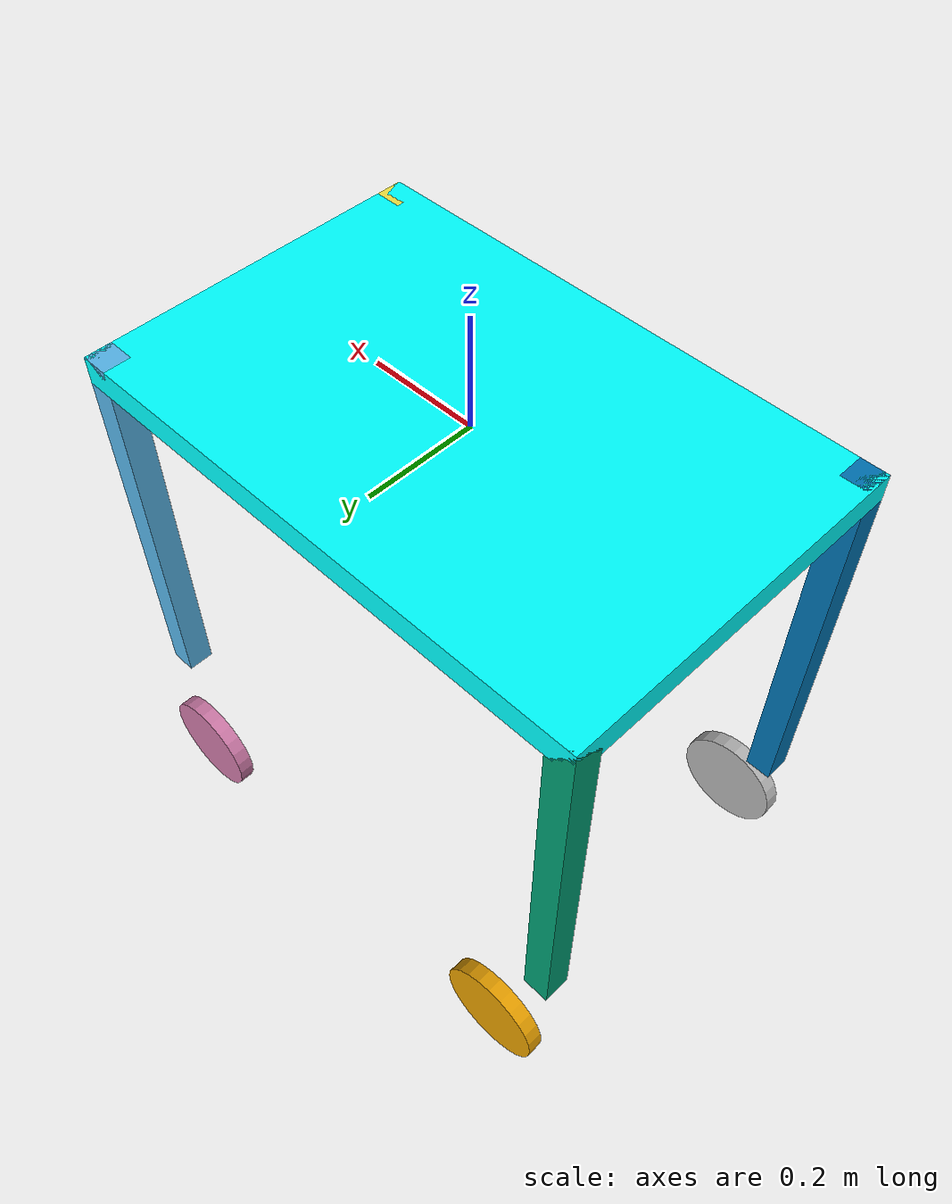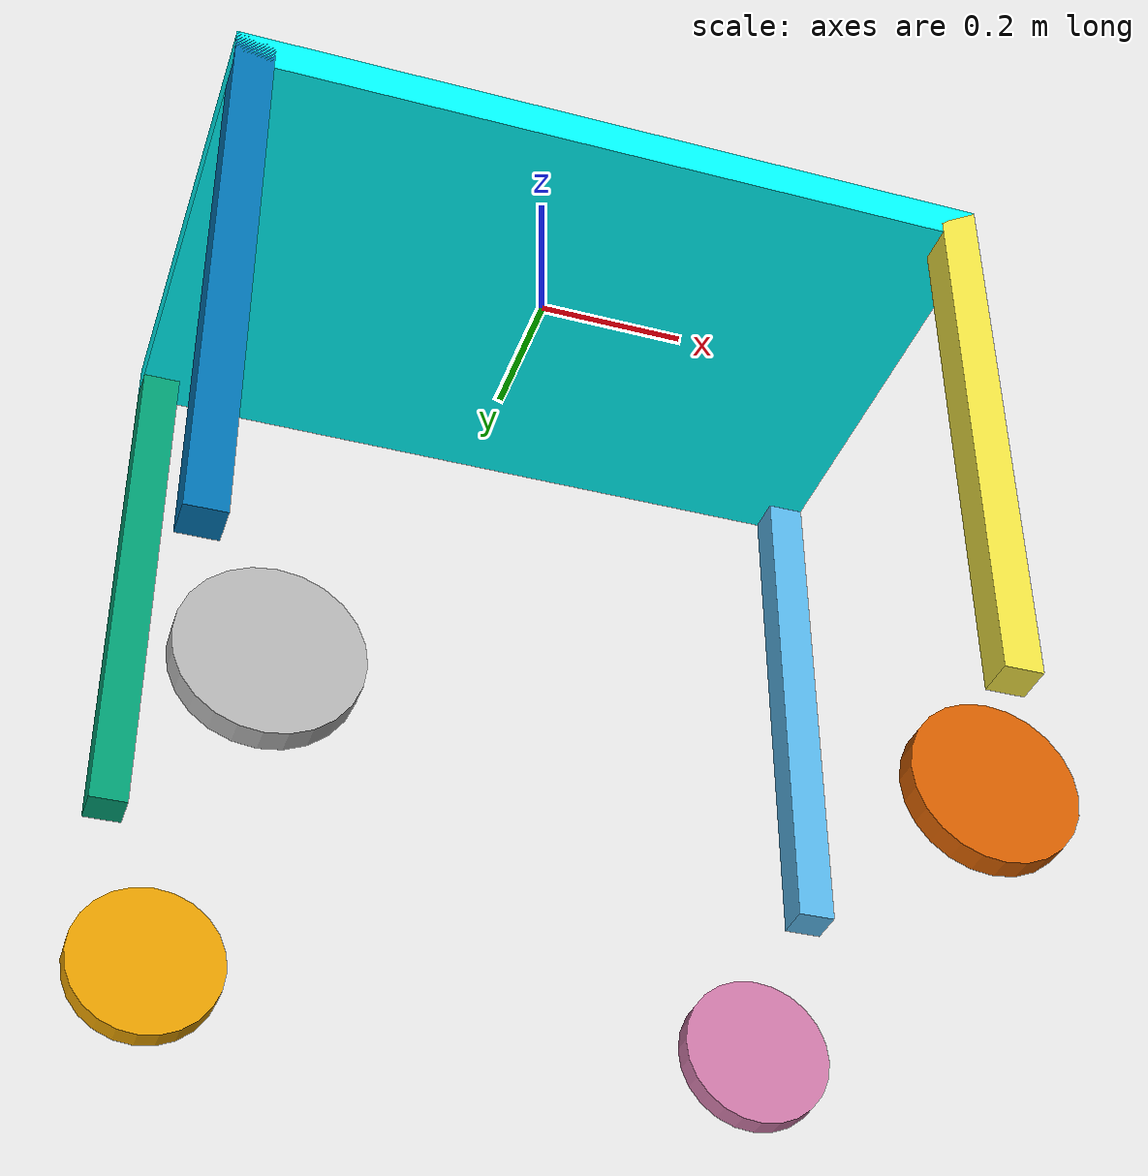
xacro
<?xml version='1.0'?>

<robot name="robot" xmlns:xacro="http://www.ros.org/wiki/xacro">

  <xacro:property name="chassis_width" value="0.65"/>
  <xacro:property name="chassis_length" value="1"/>
  <xacro:property name="chassis_height" value="0.05"/>
  <xacro:property name="chassis_mass" value="1.0"/>
  <xacro:property name="wheel_radius" value="0.1"/>
  <xacro:property name="wheel_width" value="0.03"/>
  <xacro:property name="wheel_mass" value="0.5"/>
  <xacro:property name="leg_length" value="0.05"/>
  <xacro:property name="leg_width" value="0.05"/>
  <xacro:property name="leg_height" value="0.75"/>
  <xacro:property name="leg_mass" value="0.4"/>
  <link name='chassis'>
    <collision name='chassis_collision'>
      <geometry>
        <box size="${chassis_length} ${chassis_width} ${chassis_height}"/>
      </geometry>
    </collision>
    <visual name='chassis_visual'>
      <origin xyz="0 0 0" rpy=" 0 0 0"/>
      <geometry>
        <box size="${chassis_length} ${chassis_width} ${chassis_height}"/>
      </geometry>
      <material name="Cyan">
        <color rgba="0 1.0 1.0 1.0"/>
      </material>
    </visual>
  </link>

  <link name='leg_FR'>
    <collision name='leg_FR_collision'>
      <origin xyz="0 0 0" rpy="0 0 0"/>
      <geometry>
        <box size="${leg_length} ${leg_width} ${leg_height}"/>
      </geometry>
    </collision>
    <visual name='leg_FR_visual'>
      <origin xyz="0 0 0" rpy="0 0 0"/>
      <geometry>
        <box size="${leg_length} ${leg_width} ${leg_height}"/>
      </geometry>
    </visual>
  </link>

  <link name='leg_FL'>
    <collision name='leg_FL_collision'>
      <origin xyz="0 0 0" rpy="0 0 0"/>
      <geometry>
        <box size="${leg_length} ${leg_width} ${leg_height}"/>
      </geometry>
    </collision>
    <visual name='leg_FL_visual'>
      <origin xyz="0 0 0" rpy="0 0 0"/>
      <geometry>
        <box size="${leg_length} ${leg_width} ${leg_height}"/>
      </geometry>
    </visual>
  </link>

  <link name='leg_BR'>
    <collision name='leg_BR_collision'>
      <origin xyz="0 0 0" rpy="0 0 0"/>
      <geometry>
        <box size="${leg_length} ${leg_width} ${leg_height}"/>
      </geometry>
    </collision>
    <visual name='leg_BR_visual'>
      <origin xyz="0 0 0" rpy="0 0 0"/>
      <geometry>
        <box size="${leg_length} ${leg_width} ${leg_height}"/>
      </geometry>
    </visual>
  </link>

  <link name='leg_BL'>
    <collision name='leg_FR_collision'>
      <origin xyz="0 0 0" rpy="0 0 0"/>
      <geometry>
        <box size="${leg_length} ${leg_width} ${leg_height}"/>
      </geometry>
    </collision>
    <visual name='leg_BL_visual'>
      <origin xyz="0 0 0" rpy="0 0 0"/>
      <geometry>
        <box size="${leg_length} ${leg_width} ${leg_height}"/>
      </geometry>
    </visual>
  </link>

  <joint name="leg_FR_joint" type="fixed">
    <parent link="chassis"/>
    <child link="leg_FR"/>
    <origin xyz="${chassis_length/2 - leg_length/2} ${chassis_width/2 - leg_length/2} ${chassis_height/2 - leg_height/2}"/>
  </joint>

  <joint name="leg_FL_joint" type="fixed">
    <parent link="chassis"/>
    <child link="leg_FL"/>
    <origin xyz="-${chassis_length/2 - leg_length/2} ${chassis_width/2 - leg_length/2} ${chassis_height/2 - leg_height/2}"/>
  </joint>

  <joint name="leg_BR_joint" type="fixed">
    <parent link="chassis"/>
    <child link="leg_BR"/>
    <origin xyz="${chassis_length/2 - leg_length/2} -${chassis_width/2 - leg_length/2} ${chassis_height/2 - leg_height/2}"/>
  </joint>

  <joint name="leg_BL_joint" type="fixed">
    <parent link="chassis"/>
    <child link="leg_BL"/>
    <origin xyz="-${chassis_length/2 - leg_length/2} -${chassis_width/2 - leg_length/2} ${chassis_height/2 - leg_height/2}"/>
  </joint>

  <link name='wheel_FR'>
    <collision name='wheel_FR_collision'>
      <origin xyz="0 0 0" rpy="1.5708 0 0"/>
      <geometry>
        <cylinder radius="${wheel_radius}" length="${wheel_width}"/>
      </geometry>
    </collision>
    <visual name='wheel_FR_visual'>
      <origin xyz="0 0 0" rpy="1.5708 0 0"/>
      <geometry>
        <cylinder radius="${wheel_radius}" length="${wheel_width}"/>
      </geometry>
    </visual>
  </link>

  <link name='wheel_FL'>
    <collision name='wheel_FL_collision'>
      <origin xyz="0 0 0" rpy="1.5708 0 0"/>
      <geometry>
        <cylinder radius="${wheel_radius}" length="${wheel_width}"/>
      </geometry>
    </collision>
    <visual name='wheel_FL_visual'>
      <origin xyz="0 0 0" rpy="1.5708 0 0"/>
      <geometry>
        <cylinder radius="${wheel_radius}" length="${wheel_width}"/>
      </geometry>
    </visual>
  </link>

  <link name='wheel_RR'>
    <collision name='wheel_RR_collision'>
      <origin xyz="0 0 0" rpy="1.5708 0 0"/>
      <geometry>
        <cylinder radius="${wheel_radius}" length="${wheel_width}"/>
      </geometry>
    </collision>
    <visual name='wheel_RR_visual'>
      <origin xyz="0 0 0" rpy="1.5708 0 0"/>
      <geometry>
        <cylinder radius="${wheel_radius}" length="${wheel_width}"/>
      </geometry>
    </visual>
  </link>

  <link name='wheel_RL'>
    <collision name='wheel_RL_collision'>
      <origin xyz="0 0 0" rpy="1.5708 0 0"/>
      <geometry>
        <cylinder radius="${wheel_radius}" length="${wheel_width}"/>
      </geometry>
    </collision>
    <visual name='wheel_RL_visual'>
      <origin xyz="0 0 0" rpy="1.5708 0 0"/>
      <geometry>
        <cylinder radius="${wheel_radius}" length="${wheel_width}"/>
      </geometry>
    </visual>
  </link>

  <joint name="wheel_FR_joint" type="continuous">
    <parent link="chassis"/>
    <child link="wheel_FR"/>
    <origin xyz="${chassis_length/2-wheel_radius} -${chassis_width/2+wheel_width/2} ${chassis_height - leg_height - wheel_radius*2.1}"
            rpy="0 0 0"/>
    <axis xyz="0 1 0"/>
  </joint>

  <joint name="wheel_FL_joint" type="continuous">
    <parent link="chassis"/>
    <child link="wheel_FL"/>
    <origin xyz="${chassis_length/2-wheel_radius} ${chassis_width/2+wheel_width/2} ${chassis_height - leg_height - wheel_radius*2.1}"
            rpy="0 0 0"/>
    <axis xyz="0 1 0"/>
  </joint>

  <joint name="wheel_RR_joint" type="continuous">
    <parent link="chassis"/>
    <child link="wheel_RR"/>
    <origin xyz="-${chassis_length/2-wheel_radius} -${chassis_width/2+wheel_width/2} ${chassis_height - leg_height - wheel_radius*2.1}"
            rpy="0 0 0"/>
    <axis xyz="0 1 0"/>
  </joint>

  <joint name="wheel_RL_joint" type="continuous">
    <parent link="chassis"/>
    <child link="wheel_RL"/>
    <origin xyz="-${chassis_length/2-wheel_radius} ${chassis_width/2+wheel_width/2} ${chassis_height - leg_height - wheel_radius*2.1}"
            rpy="0 0 0"/>
    <axis xyz="0 1 0"/>
  </joint>
</robot>
